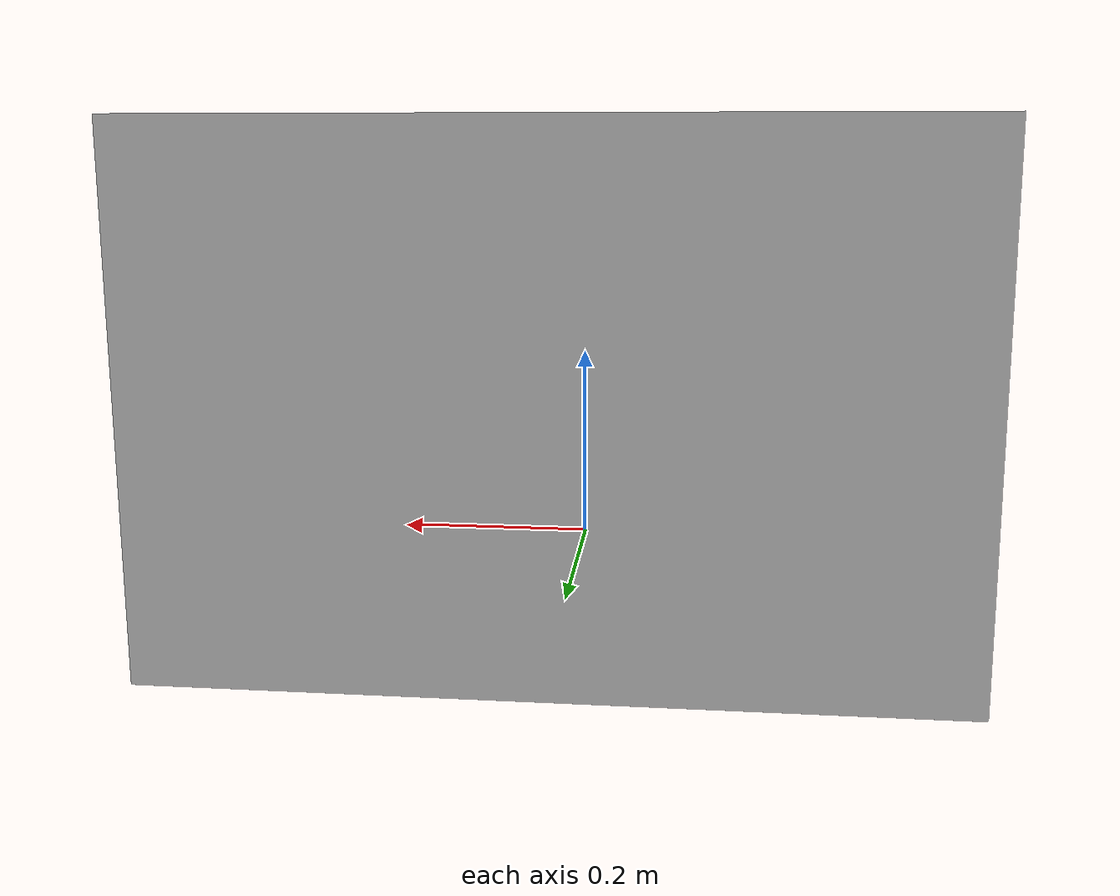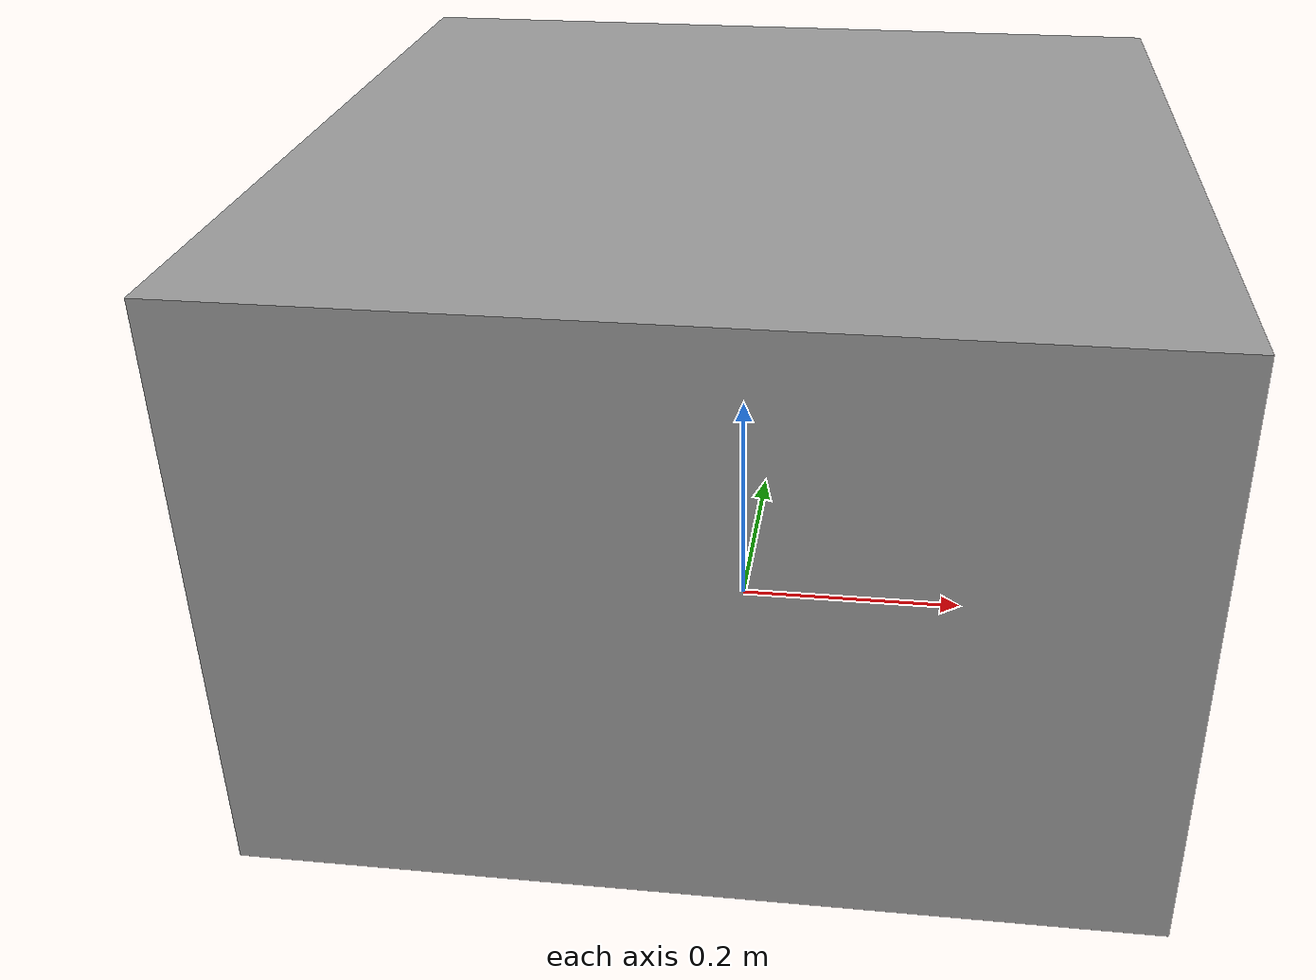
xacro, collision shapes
<?xml version="1.0" ?>
<robot name="fw_rev_03" xmlns:xacro="http://ros.org/wiki/xacro">
  <xacro:property name="PI" value="3.1415926535897931"/>
  <xacro:property name="bodyHeight" value="0.37"/>
  <xacro:property name="bodyLength" value="0.7"/>
  <xacro:property name="bodyWidth" value="0.6"/>
  <xacro:property name="bodyMass" value="7.18"/>

  <xacro:include filename="$(find fw_rev_03_description)/urdf/materials.xacro"/>

  <link name="base_footprint"/>

  <joint name="base_joint" type="fixed">
    <parent link="base_footprint"/>
    <child link="base_link" />
    <origin xyz="0.17 0 0.08" rpy="0 0 0"/>
  </joint>

  <link name="base_link">
    <visual>
      <origin xyz="0 0 0" rpy="0 0 0"/>
      <geometry>
        <mesh filename="package://fw_rev_03_description/meshes/bases/fw_rev_03.stl" scale="0.001 0.001 0.001"/>
      </geometry>
      <material name="grey"/>
    </visual>

    <collision>
      <origin xyz="-0.17 0 0.1265" rpy="0 0 0"/>
      <geometry>
        <box size="${bodyLength} ${bodyWidth+0.1} ${bodyHeight+0.1}"/>
      </geometry>
    </collision>

    <inertial>
      <origin xyz="0 0 0.1265" rpy="0 0 0"/>
      <mass value="7.18"/>
      <inertia ixx="0.15413605166" ixy="0" ixz="0"
               iyy="0.20223666666" iyz="0"
               izz="0.12469805166" />
    </inertial>
  </link>

  <joint name="imu_joint" type="fixed">
    <parent link="base_link"/>
    <child link="imu_link"/>
    <origin xyz="-0.17 0 0.2" rpy="0 0 0"/>
  </joint>

  <link name="imu_link"/>

  <joint name="scan_joint" type="fixed">
    <parent link="base_link"/>
    <child link="base_scan"/>
    <origin xyz="-0.17 0 0.34" rpy="0 0 3.14"/>
  </joint>

  <link name="base_scan">
  <visual>
    <origin xyz="0 0 0.0" rpy="0 0 0"/>
    <geometry>
      <mesh filename="package://fw_rev_03_description/meshes/sensors/lds.stl" scale="0.001 0.001 0.001"/>
    </geometry>
    <material name="blue"/>
  </visual>
  <collision>
    <origin xyz="0.015 0 -0.0065" rpy="0 0 0"/>
    <geometry>
      <cylinder length="0.0315" radius="0.055"/>
    </geometry>
  </collision>
  <inertial>
    <mass value="0.114" />
    <origin xyz="0 0 0" />
    <inertia ixx="0.001" ixy="0.0" ixz="0.0"
             iyy="0.001" iyz="0.0"
             izz="0.001" />
  </inertial>
  </link>

  <joint name="scan_joint2" type="fixed">
    <parent link="base_link"/>
    <child link="base_scan_rp_filtered"/>
    <origin xyz="0.135 0 0.22" rpy="0 0 3.14"/>
  </joint>

    <link name="base_scan_rp_filtered">
  <visual>
    <origin xyz="0 0 0.0" rpy="0 0 0"/>
    <geometry>
      <mesh filename="package://fw_rev_03_description/meshes/sensors/lds.stl" scale="0.001 0.001 0.001"/>
    </geometry>
    <material name="black"/>
  </visual>
  <collision>
    <origin xyz="0.015 0 -0.0065" rpy="0 0 0"/>
    <geometry>
      <cylinder length="0.0315" radius="0.055"/>
    </geometry>
  </collision>
  <inertial>
    <mass value="0.114" />
    <origin xyz="0 0 0" />
    <inertia ixx="0.001" ixy="0.0" ixz="0.0"
             iyy="0.001" iyz="0.0"
             izz="0.001" />
  </inertial>
  </link>

  <joint name="wheel_left_joint" type="continuous">
    <parent link="base_link"/>
    <child link="wheel_left_link"/>
    <origin xyz="0.0 0.325 0.055" rpy="-1.57 0 0"/>
    <axis xyz="0 0 1"/>
  </joint>

  <link name="wheel_left_link">
    <visual>
      <origin xyz="0 0 0" rpy="1.57 0 0"/>
      <geometry>
        <mesh filename="package://fw_rev_03_description/meshes/wheels/left_tire.stl" scale="0.0035 0.0035 0.0035"/>
      </geometry>
      <material name="dark"/>
    </visual>

    <collision>
      <origin xyz="0 0 0" rpy="0 0 0"/>
      <geometry>
        <cylinder length="0.018" radius="0.033"/>
      </geometry>
    </collision>

    <inertial>
      <origin xyz="0 0 0" />
      <mass value="2.8498940e-02" />
      <inertia ixx="1.1175580e-05" ixy="-4.2369783e-11" ixz="-5.9381719e-09"
               iyy="1.1192413e-05" iyz="-1.4400107e-11"
               izz="2.0712558e-05" />
      </inertial>
  </link>

  <joint name="wheel_right_joint" type="continuous">
    <parent link="base_link"/>
    <child link="wheel_right_link"/>
    <origin xyz="0.0 -0.325 0.055" rpy="-1.57 0 0"/>
    <axis xyz="0 0 1"/>
  </joint>

  <link name="wheel_right_link">
    <visual>
      <origin xyz="0 0 0" rpy="1.57 0 0"/>
      <geometry>
        <mesh filename="package://fw_rev_03_description/meshes/wheels/right_tire.stl" scale="0.0035 0.0035 0.0035"/>
      </geometry>
      <material name="dark"/>
    </visual>

    <collision>
      <origin xyz="0 0 0" rpy="0 0 0"/>
      <geometry>
        <cylinder length="0.018" radius="0.033"/>
      </geometry>
    </collision>

    <inertial>
      <origin xyz="0 0 0" />
      <mass value="2.8498940e-02" />
      <inertia ixx="1.1175580e-05" ixy="-4.2369783e-11" ixz="-5.9381719e-09"
               iyy="1.1192413e-05" iyz="-1.4400107e-11"
               izz="2.0712558e-05" />
      </inertial>
  </link>

  <joint name="caster_back_joint_right" type="fixed">
    <parent link="base_link"/>
    <child link="caster_back_joint_right"/>
    <origin xyz="-0.45 -0.26 -0.023" rpy="-1.57 0 0"/>
  </joint>

  <link name="caster_back_joint_right">
    <collision>
      <origin xyz="0 0.001 0" rpy="0 0 0"/>
      <geometry>
        <box size="0.030 0.009 0.020"/>
      </geometry>
    </collision>

    <inertial>
      <origin xyz="0 0 0" />
      <mass value="0.005" />
      <inertia ixx="0.001" ixy="0.0" ixz="0.0"
               iyy="0.001" iyz="0.0"
               izz="0.001" />
    </inertial>
  </link>

  <joint name="caster_back_joint_left" type="fixed">
    <parent link="base_link"/>
    <child link="caster_back_joint_left"/>
    <origin xyz="-0.45 0.26 -0.023" rpy="-1.57 0 0"/>
  </joint>

  <link name="caster_back_joint_left">
    <collision>
      <origin xyz="0 0.001 0" rpy="0 0 0"/>
      <geometry>
        <box size="0.030 0.009 0.020"/>
      </geometry>
    </collision>

    <inertial>
      <origin xyz="0 0 0" />
      <mass value="0.005" />
      <inertia ixx="0.001" ixy="0.0" ixz="0.0"
               iyy="0.001" iyz="0.0"
               izz="0.001" />
    </inertial>
  </link>

</robot>
